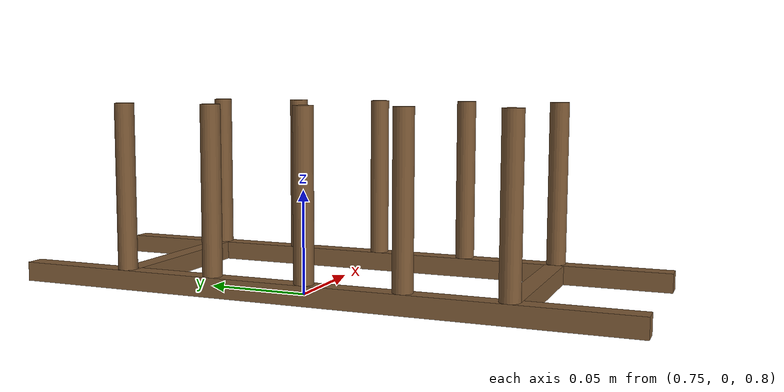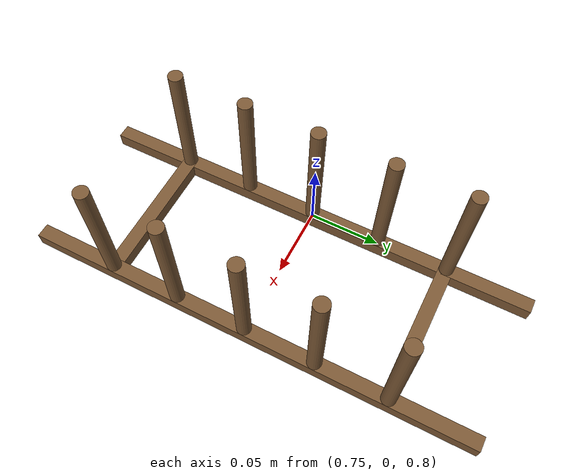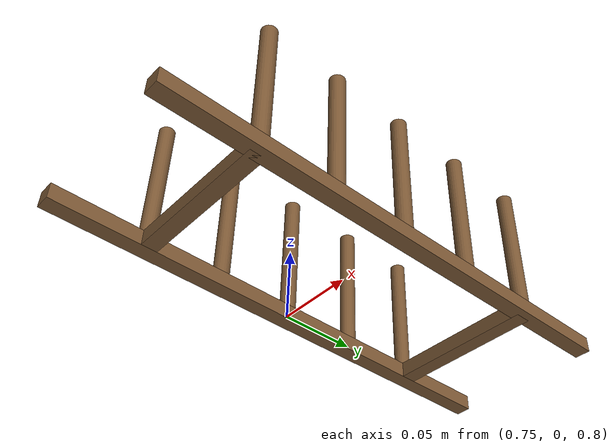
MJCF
<mujoco>
      <asset>
        <texture type="2d" name="light_wood" file="light_wood.png"/>
        <material name="wood_rack" texture="light_wood" specular="0.5" shininess="0.5" rgba="0.7 0.7 0.7 1"/>
      </asset>

    <worldbody>
        <body name="rack_base" pos="0.8 0. 0.80">
            <geom name="rack_base_front" type="box" pos="0 0.1 0" size="0.05 0.005 0.005" material="wood_rack"/>
            <geom name="rack_base_rear" type="box" pos="0 -0.1 0" size="0.05 0.005 0.005" material="wood_rack"/>
            <geom name="rack_base_right" type="box" pos="0.05 0. 0.0" size="0.005 0.16 0.005" material="wood_rack"/>
            <geom name="rack_base_left" type="box" pos="-0.05 0. 0.0" size="0.005 0.16 0.005" material="wood_rack"/>

            <!-- Make a column to build a dish rack -->
            <body name="rack_column" pos="0 0 0.0025">
                <!-- Box type -->
                <!-- Cylinder type -->
                <geom type="cylinder" pos="-0.05 0.1 0.045" size="0.005 0.0425" material="wood_rack"/>
                <geom type="cylinder" pos="0.05 0.1 0.045" size="0.005 0.0425" material="wood_rack"/>

                <geom type="cylinder" pos="-0.05 0.05 0.045" size="0.005 0.0425" material="wood_rack"/>
                <geom type="cylinder" pos="0.05 0.05 0.045" size="0.005 0.0425" material="wood_rack"/>

                <geom type="cylinder" pos="-0.05 0.0 0.045" size="0.005 0.0425" material="wood_rack"/>
                <geom type="cylinder" pos="0.05 0.0 0.045" size="0.005 0.0425" material="wood_rack"/>

                <geom type="cylinder" pos="-0.05 -0.05 0.045" size="0.005 0.0425" material="wood_rack"/>
                <geom type="cylinder" pos="0.05 -0.05 0.045" size="0.005 0.0425" material="wood_rack"/>

                <geom type="cylinder" pos="-0.05 -0.1 0.045" size="0.005 0.0425" material="wood_rack"/>
                <geom type="cylinder" pos="0.05 -0.1 0.045" size="0.005 0.0425" material="wood_rack"/>

            </body>

        </body>

    </worldbody>
</mujoco>
